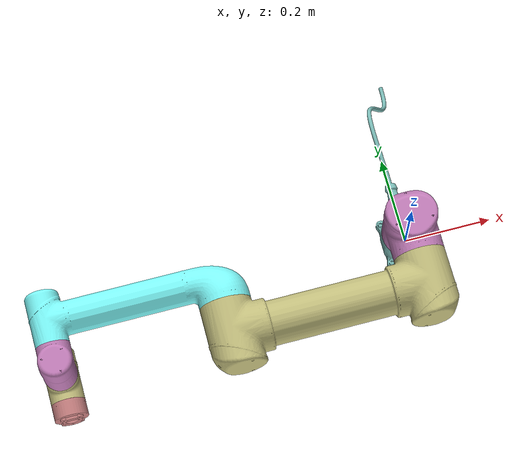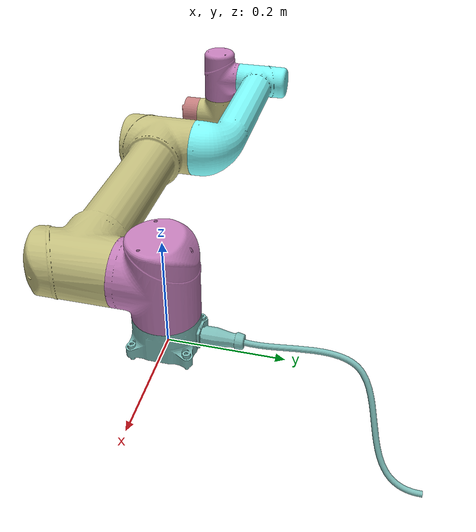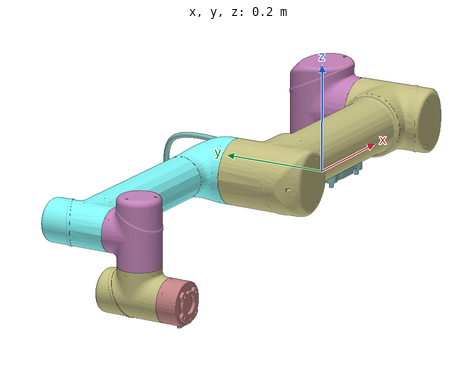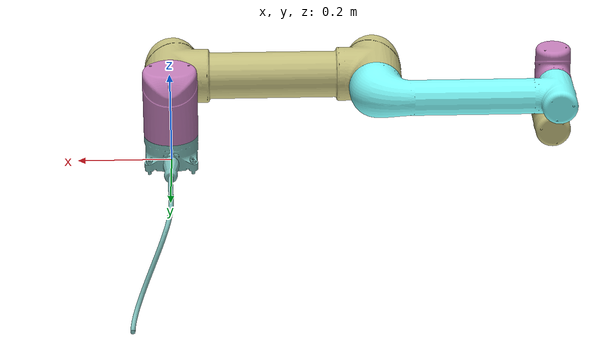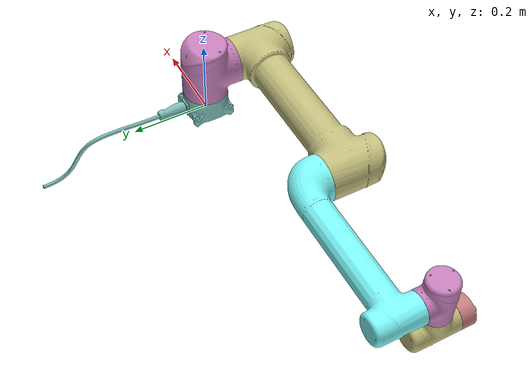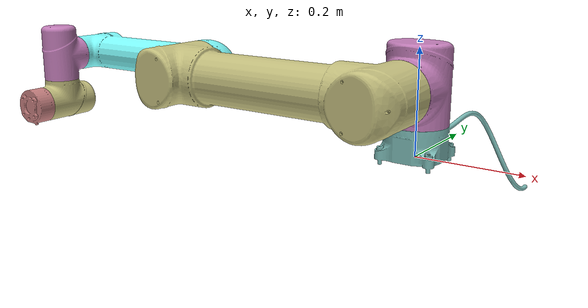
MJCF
<mujoco model="revA1">
  <compiler angle="radian" meshdir="meshes" autolimits="true" inertiafromgeom="false"/>
  <option timestep="0.002" integrator="implicitfast" cone="elliptic" impratio="10"
          iterations="50" tolerance="1e-9" gravity="0 0 -9.81"/>

  <default>
    <!-- damping/frictionloss：静止时不抖；armature（电机+减速器折算惯量）对高 kp 位置伺服的
         稳定性非常关键，太小会震、太大会钝。 -->
    <joint damping="0.8" armature="0.5" frictionloss="0.5"/>
    <geom friction="1.0 0.005 0.0001" condim="4" solref="0.004 1" solimp="0.95 0.99 0.001"/>
    <position kp="8000" kv="400"/>
  </default>

  <asset>
    <mesh name="base_link" content_type="model/stl" file="base_link.STL"/>
    <mesh name="Link1" content_type="model/stl" file="Link1.STL"/>
    <mesh name="Link2" content_type="model/stl" file="Link2.STL"/>
    <mesh name="Link3" content_type="model/stl" file="Link3.STL"/>
    <mesh name="Link4" content_type="model/stl" file="Link4.STL"/>
    <mesh name="Link5" content_type="model/stl" file="Link5.STL"/>
    <mesh name="ee_Link" content_type="model/stl" file="ee_Link.STL"/>
  </asset>

  <worldbody>
    <body name="base_link">
      <inertial pos="0.0014058 0.02448 0.022681" mass="5.0487" fullinertia="0.016738 0.0075316 0.018135 -0.0014542 0.0008442 0.0035371"/>
      <geom name="base_link_geom" type="mesh" rgba="0.5 0.75686 0.73725 1" mesh="base_link"/>
    </body>
    <body name="Link1" pos="0 0 0.0615">
      <inertial pos="1.0637e-05 -0.005295 0.072879" quat="0.99993 0.011444 0.000547113 -0.00282637" mass="13.203" diaginertia="0.036031 0.0353042 0.0252577"/>
      <joint name="joint1" range="-3.1415 3.1415"/>
      <geom name="Link1_geom" type="mesh" rgba="0.77647 0.5 0.73725 1" mesh="Link1"/>
      <body name="Link2" pos="0 -0.078 0.0675" quat="0.707105 0.707108 0 0">
        <inertial pos="-0.22081 -6.9449e-08 0.070574" quat="0.500014 0.500011 0.499986 0.499989" mass="46.802" diaginertia="1.4978 1.476 0.096336"/>
        <joint name="joint2" range="-3.1415 3.1415"/>
        <geom name="Link2_geom" type="mesh" rgba="0.77647 0.75686 0.5 1" mesh="Link2"/>
        <body name="Link3" pos="-0.442 0 -0.0003">
          <inertial pos="-0.1918 -8.518e-08 -0.055853" quat="0.511431 0.488303 0.488285 0.511445" mass="20.24" diaginertia="0.42906 0.42695 0.0204705"/>
          <joint name="joint3" range="-2.8623 2.8623"/>
          <geom name="Link3_geom" type="mesh" rgba="0.5 1 1 1" mesh="Link3"/>
          <body name="Link4" pos="-0.386 0 -0.0044">
            <inertial pos="1.8594e-07 0.0056527 0.048012" quat="0.706701 0.707512 5.79265e-05 -8.41597e-05" mass="4.6142" diaginertia="0.0068327 0.0066952 0.0037508"/>
            <joint name="joint4" range="-3.1415 3.1415"/>
            <geom name="Link4_geom" type="mesh" rgba="0.77647 0.5 0.73725 1" mesh="Link4"/>
            <body name="Link5" pos="0 -0.0543 0.0507" quat="0.707105 0.707108 0 0">
              <inertial pos="2.1811e-06 -0.0034366 0.048188" quat="0.70507 0.709137 -0.000152272 0.000125437" mass="4.7679" diaginertia="0.0074585 0.00733072 0.00381908"/>
              <joint name="joint5" range="-3.1415 3.1415"/>
              <geom name="Link5_geom" type="mesh" rgba="0.77647 0.75686 0.5 1" mesh="Link5"/>
              <body name="ee_Link" pos="0 0.0543 0.0507" quat="0.707105 -0.707108 0 0">
                <inertial pos="-2.6515e-06 -9.8103e-05 0.021947" quat="0.510385 0.489598 -0.502945 0.496837" mass="1.1773" diaginertia="0.000873069 0.000554031 0.00055272"/>
                <joint name="joint6" range="-3.1415 3.1415" axis="0 0 1"/>
                <geom name="ee_Link_geom" type="mesh" rgba="0.77647 0.5 0.5 1" mesh="ee_Link"/>
                <!-- J6 法兰中心（机械接口原点）：插工具/相机都用它 -->
                <site name="ee_site" pos="0 0 0" size="0.012" rgba="1 0.55 0.1 1" group="3"/>
                <!-- 工具尖端 / TCP：= ee_site 沿工具轴 +42.7mm -->
                <site name="tool_site" pos="0 0 0.0427" size="0.012" rgba="0.2 1 0.3 1" group="3"/>
              </body>
            </body>
          </body>
        </body>
      </body>
    </body>
  </worldbody>
  <actuator>
    <position name="act_joint1" joint="joint1" kp="4000" kv="300" ctrlrange="-3.1415 3.1415" forcerange="-300 300"/>
    <position name="act_joint2" joint="joint2" kp="20000" kv="1000" ctrlrange="-3.1415 3.1415" forcerange="-600 600"/>
    <position name="act_joint3" joint="joint3" kp="12000" kv="600" ctrlrange="-2.8623 2.8623" forcerange="-400 400"/>
    <position name="act_joint4" joint="joint4" kp="4000" kv="200" ctrlrange="-3.1415 3.1415" forcerange="-120 120"/>
    <position name="act_joint5" joint="joint5" kp="3000" kv="150" ctrlrange="-3.1415 3.1415" forcerange="-100 100"/>
    <position name="act_joint6" joint="joint6" kp="1500" kv="80" ctrlrange="-3.1415 3.1415" forcerange="-60 60"/>
  </actuator>
  <!-- 树距离 <= 2 的连杆对不参与自碰撞（关节处外观件本来就叠在一起） -->
  <contact>
    <exclude body1="base_link" body2="Link1"/>
    <exclude body1="base_link" body2="Link2"/>
    <exclude body1="Link1" body2="Link2"/>
    <exclude body1="Link1" body2="Link3"/>
    <exclude body1="Link2" body2="Link3"/>
    <exclude body1="Link2" body2="Link4"/>
    <exclude body1="Link3" body2="Link4"/>
    <exclude body1="Link3" body2="Link5"/>
    <exclude body1="Link4" body2="Link5"/>
    <exclude body1="Link4" body2="ee_Link"/>
    <exclude body1="Link5" body2="ee_Link"/>
  </contact>
</mujoco>
